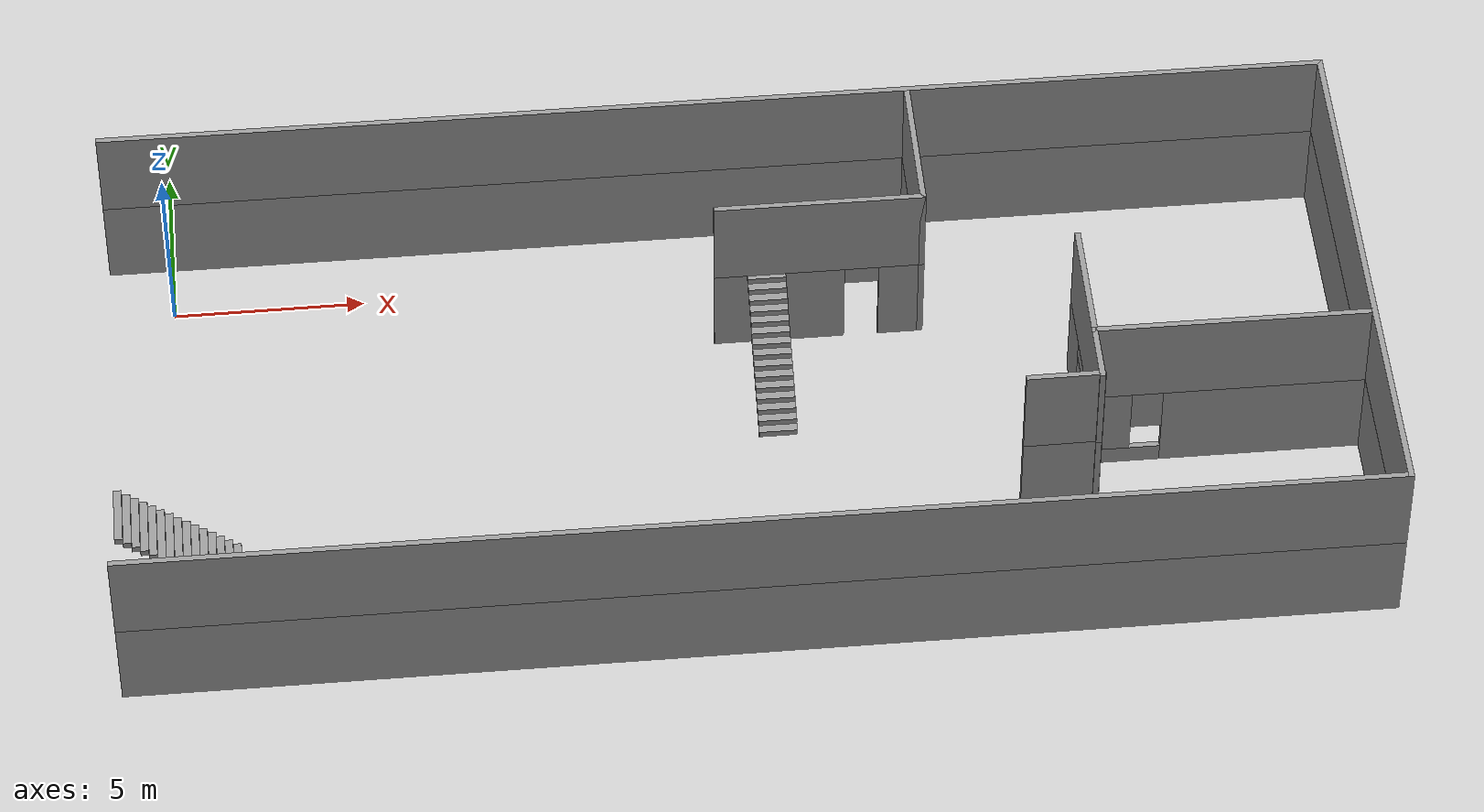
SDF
<sdf version="1.7">
 <world name="default">
  <model name="ground_plane">
   <static>1</static>
   <link name="link">
    <collision name="collision">
     <geometry><plane><normal>0 0 1</normal><size>100 100</size></plane></geometry>
     <surface><friction><ode><mu>100</mu><mu2>50</mu2></ode></friction></surface>
    </collision>
    <visual name="visual">
     <cast_shadows>0</cast_shadows>
     <geometry><plane><normal>0 0 1</normal><size>100 100</size></plane></geometry>
     <material>
      <script><uri>file://media/materials/scripts/gazebo.material</uri><name>Gazebo/Grey</name></script>
     </material>
    </visual>
   </link>
  </model>
  <model name="room_with_stairs">
   <pose>14.4299 -5.56754 0 0 -0 0</pose>
   <link name="Stairs_1">
    <visual name="Stairs_1_Visual_0">
     <pose>-13.0715 -3.52268 0.083333 0 -0 -1.5708</pose>
     <geometry><box><size>1.64089 0.206311 0.166667</size></box></geometry>
     <material>
      <script><uri>file://media/materials/scripts/gazebo.material</uri><name>Gazebo/Grey</name></script>
      <ambient>1 1 1 1</ambient>
     </material>
     <meta><layer>0</layer></meta>
    </visual>
    <collision name="Stairs_1_Collision_0">
     <geometry><box><size>1.64089 0.206311 0.166667</size></box></geometry>
     <pose>-13.0715 -3.52268 0.083333 0 -0 -1.5708</pose>
    </collision>
    <visual name="Stairs_1_Visual_1">
     <pose>-13.2778 -3.52268 0.25 0 -0 -1.5708</pose>
     <geometry><box><size>1.64089 0.206311 0.166667</size></box></geometry>
     <material>
      <script><uri>file://media/materials/scripts/gazebo.material</uri><name>Gazebo/Grey</name></script>
      <ambient>1 1 1 1</ambient>
     </material>
     <meta><layer>0</layer></meta>
    </visual>
    <collision name="Stairs_1_Collision_1">
     <geometry><box><size>1.64089 0.206311 0.166667</size></box></geometry>
     <pose>-13.2778 -3.52268 0.25 0 -0 -1.5708</pose>
    </collision>
    <visual name="Stairs_1_Visual_2">
     <pose>-13.4841 -3.52268 0.416667 0 -0 -1.5708</pose>
     <geometry><box><size>1.64089 0.206311 0.166667</size></box></geometry>
     <material>
      <script><uri>file://media/materials/scripts/gazebo.material</uri><name>Gazebo/Grey</name></script>
      <ambient>1 1 1 1</ambient>
     </material>
     <meta><layer>0</layer></meta>
    </visual>
    <collision name="Stairs_1_Collision_2">
     <geometry><box><size>1.64089 0.206311 0.166667</size></box></geometry>
     <pose>-13.4841 -3.52268 0.416667 0 -0 -1.5708</pose>
    </collision>
    <visual name="Stairs_1_Visual_3">
     <pose>-13.6904 -3.52268 0.583333 0 -0 -1.5708</pose>
     <geometry><box><size>1.64089 0.206311 0.166667</size></box></geometry>
     <material>
      <script><uri>file://media/materials/scripts/gazebo.material</uri><name>Gazebo/Grey</name></script>
      <ambient>1 1 1 1</ambient>
     </material>
     <meta><layer>0</layer></meta>
    </visual>
    <collision name="Stairs_1_Collision_3">
     <geometry><box><size>1.64089 0.206311 0.166667</size></box></geometry>
     <pose>-13.6904 -3.52268 0.583333 0 -0 -1.5708</pose>
    </collision>
    <visual name="Stairs_1_Visual_4">
     <pose>-13.8967 -3.52268 0.75 0 -0 -1.5708</pose>
     <geometry><box><size>1.64089 0.206311 0.166667</size></box></geometry>
     <material>
      <script><uri>file://media/materials/scripts/gazebo.material</uri><name>Gazebo/Grey</name></script>
      <ambient>1 1 1 1</ambient>
     </material>
     <meta><layer>0</layer></meta>
    </visual>
    <collision name="Stairs_1_Collision_4">
     <geometry><box><size>1.64089 0.206311 0.166667</size></box></geometry>
     <pose>-13.8967 -3.52268 0.75 0 -0 -1.5708</pose>
    </collision>
    <visual name="Stairs_1_Visual_5">
     <pose>-14.103 -3.52268 0.916667 0 -0 -1.5708</pose>
     <geometry><box><size>1.64089 0.206311 0.166667</size></box></geometry>
     <material>
      <script><uri>file://media/materials/scripts/gazebo.material</uri><name>Gazebo/Grey</name></script>
      <ambient>1 1 1 1</ambient>
     </material>
     <meta><layer>0</layer></meta>
    </visual>
    <collision name="Stairs_1_Collision_5">
     <geometry><box><size>1.64089 0.206311 0.166667</size></box></geometry>
     <pose>-14.103 -3.52268 0.916667 0 -0 -1.5708</pose>
    </collision>
    <visual name="Stairs_1_Visual_6">
     <pose>-14.3094 -3.52268 1.08333 0 -0 -1.5708</pose>
     <geometry><box><size>1.64089 0.206311 0.166667</size></box></geometry>
     <material>
      <script><uri>file://media/materials/scripts/gazebo.material</uri><name>Gazebo/Grey</name></script>
      <ambient>1 1 1 1</ambient>
     </material>
     <meta><layer>0</layer></meta>
    </visual>
    <collision name="Stairs_1_Collision_6">
     <geometry><box><size>1.64089 0.206311 0.166667</size></box></geometry>
     <pose>-14.3094 -3.52268 1.08333 0 -0 -1.5708</pose>
    </collision>
    <visual name="Stairs_1_Visual_7">
     <pose>-14.5157 -3.52268 1.25 0 -0 -1.5708</pose>
     <geometry><box><size>1.64089 0.206311 0.166667</size></box></geometry>
     <material>
      <script><uri>file://media/materials/scripts/gazebo.material</uri><name>Gazebo/Grey</name></script>
      <ambient>1 1 1 1</ambient>
     </material>
     <meta><layer>0</layer></meta>
    </visual>
    <collision name="Stairs_1_Collision_7">
     <geometry><box><size>1.64089 0.206311 0.166667</size></box></geometry>
     <pose>-14.5157 -3.52268 1.25 0 -0 -1.5708</pose>
    </collision>
    <visual name="Stairs_1_Visual_8">
     <pose>-14.722 -3.52268 1.41667 0 -0 -1.5708</pose>
     <geometry><box><size>1.64089 0.206311 0.166667</size></box></geometry>
     <material>
      <script><uri>file://media/materials/scripts/gazebo.material</uri><name>Gazebo/Grey</name></script>
      <ambient>1 1 1 1</ambient>
     </material>
     <meta><layer>0</layer></meta>
    </visual>
    <collision name="Stairs_1_Collision_8">
     <geometry><box><size>1.64089 0.206311 0.166667</size></box></geometry>
     <pose>-14.722 -3.52268 1.41667 0 -0 -1.5708</pose>
    </collision>
    <visual name="Stairs_1_Visual_9">
     <pose>-14.9283 -3.52268 1.58333 0 -0 -1.5708</pose>
     <geometry><box><size>1.64089 0.206311 0.166667</size></box></geometry>
     <material>
      <script><uri>file://media/materials/scripts/gazebo.material</uri><name>Gazebo/Grey</name></script>
      <ambient>1 1 1 1</ambient>
     </material>
     <meta><layer>0</layer></meta>
    </visual>
    <collision name="Stairs_1_Collision_9">
     <geometry><box><size>1.64089 0.206311 0.166667</size></box></geometry>
     <pose>-14.9283 -3.52268 1.58333 0 -0 -1.5708</pose>
    </collision>
    <visual name="Stairs_1_Visual_10">
     <pose>-15.1346 -3.52268 1.75 0 -0 -1.5708</pose>
     <geometry><box><size>1.64089 0.206311 0.166667</size></box></geometry>
     <material>
      <script><uri>file://media/materials/scripts/gazebo.material</uri><name>Gazebo/Grey</name></script>
      <ambient>1 1 1 1</ambient>
     </material>
     <meta><layer>0</layer></meta>
    </visual>
    <collision name="Stairs_1_Collision_10">
     <geometry><box><size>1.64089 0.206311 0.166667</size></box></geometry>
     <pose>-15.1346 -3.52268 1.75 0 -0 -1.5708</pose>
    </collision>
    <visual name="Stairs_1_Visual_11">
     <pose>-15.3409 -3.52268 1.91667 0 -0 -1.5708</pose>
     <geometry><box><size>1.64089 0.206311 0.166667</size></box></geometry>
     <material>
      <script><uri>file://media/materials/scripts/gazebo.material</uri><name>Gazebo/Grey</name></script>
      <ambient>1 1 1 1</ambient>
     </material>
     <meta><layer>0</layer></meta>
    </visual>
    <collision name="Stairs_1_Collision_11">
     <geometry><box><size>1.64089 0.206311 0.166667</size></box></geometry>
     <pose>-15.3409 -3.52268 1.91667 0 -0 -1.5708</pose>
    </collision>
    <visual name="Stairs_1_Visual_12">
     <pose>-15.5472 -3.52268 2.08333 0 -0 -1.5708</pose>
     <geometry><box><size>1.64089 0.206311 0.166667</size></box></geometry>
     <material>
      <script><uri>file://media/materials/scripts/gazebo.material</uri><name>Gazebo/Grey</name></script>
      <ambient>1 1 1 1</ambient>
     </material>
     <meta><layer>0</layer></meta>
    </visual>
    <collision name="Stairs_1_Collision_12">
     <geometry><box><size>1.64089 0.206311 0.166667</size></box></geometry>
     <pose>-15.5472 -3.52268 2.08333 0 -0 -1.5708</pose>
    </collision>
    <visual name="Stairs_1_Visual_13">
     <pose>-15.7535 -3.52268 2.25 0 -0 -1.5708</pose>
     <geometry><box><size>1.64089 0.206311 0.166667</size></box></geometry>
     <material>
      <script><uri>file://media/materials/scripts/gazebo.material</uri><name>Gazebo/Grey</name></script>
      <ambient>1 1 1 1</ambient>
     </material>
     <meta><layer>0</layer></meta>
    </visual>
    <collision name="Stairs_1_Collision_13">
     <geometry><box><size>1.64089 0.206311 0.166667</size></box></geometry>
     <pose>-15.7535 -3.52268 2.25 0 -0 -1.5708</pose>
    </collision>
    <visual name="Stairs_1_Visual_14">
     <pose>-15.9598 -3.52268 2.41667 0 -0 -1.5708</pose>
     <geometry><box><size>1.64089 0.206311 0.166667</size></box></geometry>
     <material>
      <script><uri>file://media/materials/scripts/gazebo.material</uri><name>Gazebo/Grey</name></script>
      <ambient>1 1 1 1</ambient>
     </material>
     <meta><layer>0</layer></meta>
    </visual>
    <collision name="Stairs_1_Collision_14">
     <geometry><box><size>1.64089 0.206311 0.166667</size></box></geometry>
     <pose>-15.9598 -3.52268 2.41667 0 -0 -1.5708</pose>
    </collision>
   </link>
   <link name="Stairs_2">
    <visual name="Stairs_2_Visual_0">
     <pose>1.05534 0.01065 0.083333 0 -0 -3.14159</pose>
     <geometry><box><size>1 0.233333 0.166667</size></box></geometry>
     <material>
      <script><uri>file://media/materials/scripts/gazebo.material</uri><name>Gazebo/Grey</name></script>
      <ambient>1 1 1 1</ambient>
     </material>
     <meta><layer>0</layer></meta>
    </visual>
    <collision name="Stairs_2_Collision_0">
     <geometry><box><size>1 0.233333 0.166667</size></box></geometry>
     <pose>1.05534 0.01065 0.083333 0 -0 -3.14159</pose>
    </collision>
    <visual name="Stairs_2_Visual_1">
     <pose>1.05534 0.243983 0.25 0 -0 -3.14159</pose>
     <geometry><box><size>1 0.233333 0.166667</size></box></geometry>
     <material>
      <script><uri>file://media/materials/scripts/gazebo.material</uri><name>Gazebo/Grey</name></script>
      <ambient>1 1 1 1</ambient>
     </material>
     <meta><layer>0</layer></meta>
    </visual>
    <collision name="Stairs_2_Collision_1">
     <geometry><box><size>1 0.233333 0.166667</size></box></geometry>
     <pose>1.05534 0.243983 0.25 0 -0 -3.14159</pose>
    </collision>
    <visual name="Stairs_2_Visual_2">
     <pose>1.05534 0.477316 0.416667 0 -0 -3.14159</pose>
     <geometry><box><size>1 0.233333 0.166667</size></box></geometry>
     <material>
      <script><uri>file://media/materials/scripts/gazebo.material</uri><name>Gazebo/Grey</name></script>
      <ambient>1 1 1 1</ambient>
     </material>
     <meta><layer>0</layer></meta>
    </visual>
    <collision name="Stairs_2_Collision_2">
     <geometry><box><size>1 0.233333 0.166667</size></box></geometry>
     <pose>1.05534 0.477316 0.416667 0 -0 -3.14159</pose>
    </collision>
    <visual name="Stairs_2_Visual_3">
     <pose>1.05534 0.710649 0.583333 0 -0 -3.14159</pose>
     <geometry><box><size>1 0.233333 0.166667</size></box></geometry>
     <material>
      <script><uri>file://media/materials/scripts/gazebo.material</uri><name>Gazebo/Grey</name></script>
      <ambient>1 1 1 1</ambient>
     </material>
     <meta><layer>0</layer></meta>
    </visual>
    <collision name="Stairs_2_Collision_3">
     <geometry><box><size>1 0.233333 0.166667</size></box></geometry>
     <pose>1.05534 0.710649 0.583333 0 -0 -3.14159</pose>
    </collision>
    <visual name="Stairs_2_Visual_4">
     <pose>1.05534 0.943983 0.75 0 -0 -3.14159</pose>
     <geometry><box><size>1 0.233333 0.166667</size></box></geometry>
     <material>
      <script><uri>file://media/materials/scripts/gazebo.material</uri><name>Gazebo/Grey</name></script>
      <ambient>1 1 1 1</ambient>
     </material>
     <meta><layer>0</layer></meta>
    </visual>
    <collision name="Stairs_2_Collision_4">
     <geometry><box><size>1 0.233333 0.166667</size></box></geometry>
     <pose>1.05534 0.943983 0.75 0 -0 -3.14159</pose>
    </collision>
    <visual name="Stairs_2_Visual_5">
     <pose>1.05534 1.17732 0.916667 0 -0 -3.14159</pose>
     <geometry><box><size>1 0.233333 0.166667</size></box></geometry>
     <material>
      <script><uri>file://media/materials/scripts/gazebo.material</uri><name>Gazebo/Grey</name></script>
      <ambient>1 1 1 1</ambient>
     </material>
     <meta><layer>0</layer></meta>
    </visual>
    <collision name="Stairs_2_Collision_5">
     <geometry><box><size>1 0.233333 0.166667</size></box></geometry>
     <pose>1.05534 1.17732 0.916667 0 -0 -3.14159</pose>
    </collision>
    <visual name="Stairs_2_Visual_6">
     <pose>1.05534 1.41065 1.08333 0 -0 -3.14159</pose>
     <geometry><box><size>1 0.233333 0.166667</size></box></geometry>
     <material>
      <script><uri>file://media/materials/scripts/gazebo.material</uri><name>Gazebo/Grey</name></script>
      <ambient>1 1 1 1</ambient>
     </material>
     <meta><layer>0</layer></meta>
    </visual>
    <collision name="Stairs_2_Collision_6">
     <geometry><box><size>1 0.233333 0.166667</size></box></geometry>
     <pose>1.05534 1.41065 1.08333 0 -0 -3.14159</pose>
    </collision>
    <visual name="Stairs_2_Visual_7">
     <pose>1.05534 1.64398 1.25 0 -0 -3.14159</pose>
     <geometry><box><size>1 0.233333 0.166667</size></box></geometry>
     <material>
      <script><uri>file://media/materials/scripts/gazebo.material</uri><name>Gazebo/Grey</name></script>
      <ambient>1 1 1 1</ambient>
     </material>
     <meta><layer>0</layer></meta>
    </visual>
    <collision name="Stairs_2_Collision_7">
     <geometry><box><size>1 0.233333 0.166667</size></box></geometry>
     <pose>1.05534 1.64398 1.25 0 -0 -3.14159</pose>
    </collision>
    <visual name="Stairs_2_Visual_8">
     <pose>1.05534 1.87732 1.41667 0 -0 -3.14159</pose>
     <geometry><box><size>1 0.233333 0.166667</size></box></geometry>
     <material>
      <script><uri>file://media/materials/scripts/gazebo.material</uri><name>Gazebo/Grey</name></script>
      <ambient>1 1 1 1</ambient>
     </material>
     <meta><layer>0</layer></meta>
    </visual>
    <collision name="Stairs_2_Collision_8">
     <geometry><box><size>1 0.233333 0.166667</size></box></geometry>
     <pose>1.05534 1.87732 1.41667 0 -0 -3.14159</pose>
    </collision>
    <visual name="Stairs_2_Visual_9">
     <pose>1.05534 2.11065 1.58333 0 -0 -3.14159</pose>
     <geometry><box><size>1 0.233333 0.166667</size></box></geometry>
     <material>
      <script><uri>file://media/materials/scripts/gazebo.material</uri><name>Gazebo/Grey</name></script>
      <ambient>1 1 1 1</ambient>
     </material>
     <meta><layer>0</layer></meta>
    </visual>
    <collision name="Stairs_2_Collision_9">
     <geometry><box><size>1 0.233333 0.166667</size></box></geometry>
     <pose>1.05534 2.11065 1.58333 0 -0 -3.14159</pose>
    </collision>
    <visual name="Stairs_2_Visual_10">
     <pose>1.05534 2.34398 1.75 0 -0 -3.14159</pose>
     <geometry><box><size>1 0.233333 0.166667</size></box></geometry>
     <material>
      <script><uri>file://media/materials/scripts/gazebo.material</uri><name>Gazebo/Grey</name></script>
      <ambient>1 1 1 1</ambient>
     </material>
     <meta><layer>0</layer></meta>
    </visual>
    <collision name="Stairs_2_Collision_10">
     <geometry><box><size>1 0.233333 0.166667</size></box></geometry>
     <pose>1.05534 2.34398 1.75 0 -0 -3.14159</pose>
    </collision>
    <visual name="Stairs_2_Visual_11">
     <pose>1.05534 2.57732 1.91667 0 -0 -3.14159</pose>
     <geometry><box><size>1 0.233333 0.166667</size></box></geometry>
     <material>
      <script><uri>file://media/materials/scripts/gazebo.material</uri><name>Gazebo/Grey</name></script>
      <ambient>1 1 1 1</ambient>
     </material>
     <meta><layer>0</layer></meta>
    </visual>
    <collision name="Stairs_2_Collision_11">
     <geometry><box><size>1 0.233333 0.166667</size></box></geometry>
     <pose>1.05534 2.57732 1.91667 0 -0 -3.14159</pose>
    </collision>
    <visual name="Stairs_2_Visual_12">
     <pose>1.05534 2.81065 2.08333 0 -0 -3.14159</pose>
     <geometry><box><size>1 0.233333 0.166667</size></box></geometry>
     <material>
      <script><uri>file://media/materials/scripts/gazebo.material</uri><name>Gazebo/Grey</name></script>
      <ambient>1 1 1 1</ambient>
     </material>
     <meta><layer>0</layer></meta>
    </visual>
    <collision name="Stairs_2_Collision_12">
     <geometry><box><size>1 0.233333 0.166667</size></box></geometry>
     <pose>1.05534 2.81065 2.08333 0 -0 -3.14159</pose>
    </collision>
    <visual name="Stairs_2_Visual_13">
     <pose>1.05534 3.04398 2.25 0 -0 -3.14159</pose>
     <geometry><box><size>1 0.233333 0.166667</size></box></geometry>
     <material>
      <script><uri>file://media/materials/scripts/gazebo.material</uri><name>Gazebo/Grey</name></script>
      <ambient>1 1 1 1</ambient>
     </material>
     <meta><layer>0</layer></meta>
    </visual>
    <collision name="Stairs_2_Collision_13">
     <geometry><box><size>1 0.233333 0.166667</size></box></geometry>
     <pose>1.05534 3.04398 2.25 0 -0 -3.14159</pose>
    </collision>
    <visual name="Stairs_2_Visual_14">
     <pose>1.05534 3.27732 2.41667 0 -0 -3.14159</pose>
     <geometry><box><size>1 0.233333 0.166667</size></box></geometry>
     <material>
      <script><uri>file://media/materials/scripts/gazebo.material</uri><name>Gazebo/Grey</name></script>
      <ambient>1 1 1 1</ambient>
     </material>
     <meta><layer>0</layer></meta>
    </visual>
    <collision name="Stairs_2_Collision_14">
     <geometry><box><size>1 0.233333 0.166667</size></box></geometry>
     <pose>1.05534 3.27732 2.41667 0 -0 -3.14159</pose>
    </collision>
   </link>
   <link name="Stairs_3">
    <visual name="Stairs_3_Visual_0">
     <pose>12.5449 1.76044 0.083333 0 -0 0</pose>
     <geometry><box><size>1 0.233333 0.166667</size></box></geometry>
     <material>
      <script><uri>file://media/materials/scripts/gazebo.material</uri><name>Gazebo/Grey</name></script>
      <ambient>1 1 1 1</ambient>
     </material>
     <meta><layer>0</layer></meta>
    </visual>
    <collision name="Stairs_3_Collision_0">
     <geometry><box><size>1 0.233333 0.166667</size></box></geometry>
     <pose>12.5449 1.76044 0.083333 0 -0 0</pose>
    </collision>
    <visual name="Stairs_3_Visual_1">
     <pose>12.5449 1.5271 0.25 0 -0 0</pose>
     <geometry><box><size>1 0.233333 0.166667</size></box></geometry>
     <material>
      <script><uri>file://media/materials/scripts/gazebo.material</uri><name>Gazebo/Grey</name></script>
      <ambient>1 1 1 1</ambient>
     </material>
     <meta><layer>0</layer></meta>
    </visual>
    <collision name="Stairs_3_Collision_1">
     <geometry><box><size>1 0.233333 0.166667</size></box></geometry>
     <pose>12.5449 1.5271 0.25 0 -0 0</pose>
    </collision>
    <visual name="Stairs_3_Visual_2">
     <pose>12.5449 1.29377 0.416667 0 -0 0</pose>
     <geometry><box><size>1 0.233333 0.166667</size></box></geometry>
     <material>
      <script><uri>file://media/materials/scripts/gazebo.material</uri><name>Gazebo/Grey</name></script>
      <ambient>1 1 1 1</ambient>
     </material>
     <meta><layer>0</layer></meta>
    </visual>
    <collision name="Stairs_3_Collision_2">
     <geometry><box><size>1 0.233333 0.166667</size></box></geometry>
     <pose>12.5449 1.29377 0.416667 0 -0 0</pose>
    </collision>
    <visual name="Stairs_3_Visual_3">
     <pose>12.5449 1.06044 0.583333 0 -0 0</pose>
     <geometry><box><size>1 0.233333 0.166667</size></box></geometry>
     <material>
      <script><uri>file://media/materials/scripts/gazebo.material</uri><name>Gazebo/Grey</name></script>
      <ambient>1 1 1 1</ambient>
     </material>
     <meta><layer>0</layer></meta>
    </visual>
    <collision name="Stairs_3_Collision_3">
     <geometry><box><size>1 0.233333 0.166667</size></box></geometry>
     <pose>12.5449 1.06044 0.583333 0 -0 0</pose>
    </collision>
    <visual name="Stairs_3_Visual_4">
     <pose>12.5449 0.827104 0.75 0 -0 0</pose>
     <geometry><box><size>1 0.233333 0.166667</size></box></geometry>
     <material>
      <script><uri>file://media/materials/scripts/gazebo.material</uri><name>Gazebo/Grey</name></script>
      <ambient>1 1 1 1</ambient>
     </material>
     <meta><layer>0</layer></meta>
    </visual>
    <collision name="Stairs_3_Collision_4">
     <geometry><box><size>1 0.233333 0.166667</size></box></geometry>
     <pose>12.5449 0.827104 0.75 0 -0 0</pose>
    </collision>
    <visual name="Stairs_3_Visual_5">
     <pose>12.5449 0.593771 0.916667 0 -0 0</pose>
     <geometry><box><size>1 0.233333 0.166667</size></box></geometry>
     <material>
      <script><uri>file://media/materials/scripts/gazebo.material</uri><name>Gazebo/Grey</name></script>
      <ambient>1 1 1 1</ambient>
     </material>
     <meta><layer>0</layer></meta>
    </visual>
    <collision name="Stairs_3_Collision_5">
     <geometry><box><size>1 0.233333 0.166667</size></box></geometry>
     <pose>12.5449 0.593771 0.916667 0 -0 0</pose>
    </collision>
    <visual name="Stairs_3_Visual_6">
     <pose>12.5449 0.360437 1.08333 0 -0 0</pose>
     <geometry><box><size>1 0.233333 0.166667</size></box></geometry>
     <material>
      <script><uri>file://media/materials/scripts/gazebo.material</uri><name>Gazebo/Grey</name></script>
      <ambient>1 1 1 1</ambient>
     </material>
     <meta><layer>0</layer></meta>
    </visual>
    <collision name="Stairs_3_Collision_6">
     <geometry><box><size>1 0.233333 0.166667</size></box></geometry>
     <pose>12.5449 0.360437 1.08333 0 -0 0</pose>
    </collision>
    <visual name="Stairs_3_Visual_7">
     <pose>12.5449 0.127104 1.25 0 -0 0</pose>
     <geometry><box><size>1 0.233333 0.166667</size></box></geometry>
     <material>
      <script><uri>file://media/materials/scripts/gazebo.material</uri><name>Gazebo/Grey</name></script>
      <ambient>1 1 1 1</ambient>
     </material>
     <meta><layer>0</layer></meta>
    </visual>
    <collision name="Stairs_3_Collision_7">
     <geometry><box><size>1 0.233333 0.166667</size></box></geometry>
     <pose>12.5449 0.127104 1.25 0 -0 0</pose>
    </collision>
    <visual name="Stairs_3_Visual_8">
     <pose>12.5449 -0.106229 1.41667 0 -0 0</pose>
     <geometry><box><size>1 0.233333 0.166667</size></box></geometry>
     <material>
      <script><uri>file://media/materials/scripts/gazebo.material</uri><name>Gazebo/Grey</name></script>
      <ambient>1 1 1 1</ambient>
     </material>
     <meta><layer>0</layer></meta>
    </visual>
    <collision name="Stairs_3_Collision_8">
     <geometry><box><size>1 0.233333 0.166667</size></box></geometry>
     <pose>12.5449 -0.106229 1.41667 0 -0 0</pose>
    </collision>
    <visual name="Stairs_3_Visual_9">
     <pose>12.5449 -0.339562 1.58333 0 -0 0</pose>
     <geometry><box><size>1 0.233333 0.166667</size></box></geometry>
     <material>
      <script><uri>file://media/materials/scripts/gazebo.material</uri><name>Gazebo/Grey</name></script>
      <ambient>1 1 1 1</ambient>
     </material>
     <meta><layer>0</layer></meta>
    </visual>
    <collision name="Stairs_3_Collision_9">
     <geometry><box><size>1 0.233333 0.166667</size></box></geometry>
     <pose>12.5449 -0.339562 1.58333 0 -0 0</pose>
    </collision>
    <visual name="Stairs_3_Visual_10">
     <pose>12.5449 -0.572896 1.75 0 -0 0</pose>
     <geometry><box><size>1 0.233333 0.166667</size></box></geometry>
     <material>
      <script><uri>file://media/materials/scripts/gazebo.material</uri><name>Gazebo/Grey</name></script>
      <ambient>1 1 1 1</ambient>
     </material>
     <meta><layer>0</layer></meta>
    </visual>
    <collision name="Stairs_3_Collision_10">
     <geometry><box><size>1 0.233333 0.166667</size></box></geometry>
     <pose>12.5449 -0.572896 1.75 0 -0 0</pose>
    </collision>
    <visual name="Stairs_3_Visual_11">
     <pose>12.5449 -0.806229 1.91667 0 -0 0</pose>
     <geometry><box><size>1 0.233333 0.166667</size></box></geometry>
     <material>
      <script><uri>file://media/materials/scripts/gazebo.material</uri><name>Gazebo/Grey</name></script>
      <ambient>1 1 1 1</ambient>
     </material>
     <meta><layer>0</layer></meta>
    </visual>
    <collision name="Stairs_3_Collision_11">
     <geometry><box><size>1 0.233333 0.166667</size></box></geometry>
     <pose>12.5449 -0.806229 1.91667 0 -0 0</pose>
    </collision>
    <visual name="Stairs_3_Visual_12">
     <pose>12.5449 -1.03956 2.08333 0 -0 0</pose>
     <geometry><box><size>1 0.233333 0.166667</size></box></geometry>
     <material>
      <script><uri>file://media/materials/scripts/gazebo.material</uri><name>Gazebo/Grey</name></script>
      <ambient>1 1 1 1</ambient>
     </material>
     <meta><layer>0</layer></meta>
    </visual>
    <collision name="Stairs_3_Collision_12">
     <geometry><box><size>1 0.233333 0.166667</size></box></geometry>
     <pose>12.5449 -1.03956 2.08333 0 -0 0</pose>
    </collision>
    <visual name="Stairs_3_Visual_13">
     <pose>12.5449 -1.2729 2.25 0 -0 0</pose>
     <geometry><box><size>1 0.233333 0.166667</size></box></geometry>
     <material>
      <script><uri>file://media/materials/scripts/gazebo.material</uri><name>Gazebo/Grey</name></script>
      <ambient>1 1 1 1</ambient>
     </material>
     <meta><layer>0</layer></meta>
    </visual>
    <collision name="Stairs_3_Collision_13">
     <geometry><box><size>1 0.233333 0.166667</size></box></geometry>
     <pose>12.5449 -1.2729 2.25 0 -0 0</pose>
    </collision>
    <visual name="Stairs_3_Visual_14">
     <pose>12.5449 -1.50623 2.41667 0 -0 0</pose>
     <geometry><box><size>1 0.233333 0.166667</size></box></geometry>
     <material>
      <script><uri>file://media/materials/scripts/gazebo.material</uri><name>Gazebo/Grey</name></script>
      <ambient>1 1 1 1</ambient>
     </material>
     <meta><layer>0</layer></meta>
    </visual>
    <collision name="Stairs_3_Collision_14">
     <geometry><box><size>1 0.233333 0.166667</size></box></geometry>
     <pose>12.5449 -1.50623 2.41667 0 -0 0</pose>
    </collision>
   </link>
   <link name="Wall_26">
    <pose>2.43809 3.3634 0 0 -0 0</pose>
    <visual name="Wall_26_Visual_0">
     <pose>-1.04303 0 1.25 0 -0 0</pose>
     <geometry><box><size>3.41395 0.15 2.5</size></box></geometry>
     <material>
      <script><uri>file://media/materials/scripts/gazebo.material</uri><name>Gazebo/Grey</name></script>
      <ambient>1 1 1 1</ambient>
     </material>
     <meta><layer>0</layer></meta>
    </visual>
    <collision name="Wall_26_Collision_0">
     <geometry><box><size>3.41395 0.15 2.5</size></box></geometry>
     <pose>-1.04303 0 1.25 0 -0 0</pose>
    </collision>
    <visual name="Wall_26_Visual_1">
     <pose>2.15698 0 1.25 0 -0 0</pose>
     <geometry><box><size>1.18605 0.15 2.5</size></box></geometry>
     <material>
      <script><uri>file://media/materials/scripts/gazebo.material</uri><name>Gazebo/Grey</name></script>
      <ambient>1 1 1 1</ambient>
     </material>
     <meta><layer>0</layer></meta>
    </visual>
    <collision name="Wall_26_Collision_1">
     <geometry><box><size>1.18605 0.15 2.5</size></box></geometry>
     <pose>2.15698 0 1.25 0 -0 0</pose>
    </collision>
    <visual name="Wall_26_Visual_2">
     <pose>1.11395 0 2.25 0 -0 0</pose>
     <geometry><box><size>0.9 0.15 0.5</size></box></geometry>
     <material>
      <script><uri>file://media/materials/scripts/gazebo.material</uri><name>Gazebo/Grey</name></script>
      <ambient>1 1 1 1</ambient>
     </material>
     <meta><layer>0</layer></meta>
    </visual>
    <collision name="Wall_26_Collision_2">
     <geometry><box><size>0.9 0.15 0.5</size></box></geometry>
     <pose>1.11395 0 2.25 0 -0 0</pose>
    </collision>
   </link>
   <link name="Wall_27">
    <collision name="Wall_27_Collision">
     <geometry><box><size>4 0.15 2.5</size></box></geometry>
     <pose>0 0 1.25 0 -0 0</pose>
    </collision>
    <visual name="Wall_27_Visual">
     <pose>0 0 1.25 0 -0 0</pose>
     <geometry><box><size>4 0.15 2.5</size></box></geometry>
     <material>
      <script><uri>file://media/materials/scripts/gazebo.material</uri><name>Gazebo/Grey</name></script>
      <ambient>1 1 1 1</ambient>
     </material>
     <meta><layer>0</layer></meta>
    </visual>
    <pose>5.11309 5.2884 0 0 -0 1.5708</pose>
   </link>
   <link name="Wall_34">
    <pose>12.456 -1.72142 0 0 -0 3.14159</pose>
    <visual name="Wall_34_Visual_0">
     <pose>-0.973121 0 1.25 0 -0 0</pose>
     <geometry><box><size>5.30376 0.15 2.5</size></box></geometry>
     <material>
      <script><uri>file://media/materials/scripts/gazebo.material</uri><name>Gazebo/Grey</name></script>
      <ambient>1 1 1 1</ambient>
     </material>
     <meta><layer>0</layer></meta>
    </visual>
    <collision name="Wall_34_Collision_0">
     <geometry><box><size>5.30376 0.15 2.5</size></box></geometry>
     <pose>-0.973121 0 1.25 0 -0 0</pose>
    </collision>
    <visual name="Wall_34_Visual_1">
     <pose>2.65188 0 0.25 0 -0 0</pose>
     <geometry><box><size>1.94624 0.15 0.5</size></box></geometry>
     <material>
      <script><uri>file://media/materials/scripts/gazebo.material</uri><name>Gazebo/Grey</name></script>
      <ambient>1 1 1 1</ambient>
     </material>
     <meta><layer>0</layer></meta>
    </visual>
    <collision name="Wall_34_Collision_1">
     <geometry><box><size>1.94624 0.15 0.5</size></box></geometry>
     <pose>2.65188 0 0.25 0 -0 0</pose>
    </collision>
    <visual name="Wall_34_Visual_2">
     <pose>3.05188 0 1.5 0 -0 0</pose>
     <geometry><box><size>1.14624 0.15 2</size></box></geometry>
     <material>
      <script><uri>file://media/materials/scripts/gazebo.material</uri><name>Gazebo/Grey</name></script>
      <ambient>1 1 1 1</ambient>
     </material>
     <meta><layer>0</layer></meta>
    </visual>
    <collision name="Wall_34_Collision_2">
     <geometry><box><size>1.14624 0.15 2</size></box></geometry>
     <pose>3.05188 0 1.5 0 -0 0</pose>
    </collision>
    <visual name="Wall_34_Visual_3">
     <pose>2.07876 0 1.9 0 -0 0</pose>
     <geometry><box><size>0.8 0.15 1.2</size></box></geometry>
     <material>
      <script><uri>file://media/materials/scripts/gazebo.material</uri><name>Gazebo/Grey</name></script>
      <ambient>1 1 1 1</ambient>
     </material>
     <meta><layer>0</layer></meta>
    </visual>
    <collision name="Wall_34_Collision_3">
     <geometry><box><size>0.8 0.15 1.2</size></box></geometry>
     <pose>2.07876 0 1.9 0 -0 0</pose>
    </collision>
   </link>
   <link name="Wall_36">
    <pose>8.90598 -0.826159 0 0 -0 -1.5708</pose>
    <visual name="Wall_36_Visual_0">
     <pose>-1.74016 0 1.25 0 -0 0</pose>
     <geometry><box><size>1.51968 0.15 2.5</size></box></geometry>
     <material>
      <script><uri>file://media/materials/scripts/gazebo.material</uri><name>Gazebo/Grey</name></script>
      <ambient>1 1 1 1</ambient>
     </material>
     <meta><layer>0</layer></meta>
    </visual>
    <collision name="Wall_36_Collision_0">
     <geometry><box><size>1.51968 0.15 2.5</size></box></geometry>
     <pose>-1.74016 0 1.25 0 -0 0</pose>
    </collision>
    <visual name="Wall_36_Visual_1">
     <pose>1.20984 0 1.25 0 -0 0</pose>
     <geometry><box><size>2.58032 0.15 2.5</size></box></geometry>
     <material>
      <script><uri>file://media/materials/scripts/gazebo.material</uri><name>Gazebo/Grey</name></script>
      <ambient>1 1 1 1</ambient>
     </material>
     <meta><layer>0</layer></meta>
    </visual>
    <collision name="Wall_36_Collision_1">
     <geometry><box><size>2.58032 0.15 2.5</size></box></geometry>
     <pose>1.20984 0 1.25 0 -0 0</pose>
    </collision>
    <visual name="Wall_36_Visual_2">
     <pose>-0.530322 0 2.25 0 -0 0</pose>
     <geometry><box><size>0.9 0.15 0.5</size></box></geometry>
     <material>
      <script><uri>file://media/materials/scripts/gazebo.material</uri><name>Gazebo/Grey</name></script>
      <ambient>1 1 1 1</ambient>
     </material>
     <meta><layer>0</layer></meta>
    </visual>
    <collision name="Wall_36_Collision_2">
     <geometry><box><size>0.9 0.15 0.5</size></box></geometry>
     <pose>-0.530322 0 2.25 0 -0 0</pose>
    </collision>
   </link>
   <link name="Wall_37">
    <collision name="Wall_37_Collision">
     <geometry><box><size>2.01493 0.15 2.5</size></box></geometry>
     <pose>0 0 1.25 0 -0 0</pose>
    </collision>
    <visual name="Wall_37_Visual">
     <pose>0 0 1.25 0 -0 0</pose>
     <geometry><box><size>2.01493 0.15 2.5</size></box></geometry>
     <material>
      <script><uri>file://media/materials/scripts/gazebo.material</uri><name>Gazebo/Grey</name></script>
      <ambient>1 1 1 1</ambient>
     </material>
     <meta><layer>0</layer></meta>
    </visual>
    <pose>7.98841 -3.21398 0 0 -0 -3.13362</pose>
   </link>
   <link name="Wall_4">
    <collision name="Wall_4_Collision">
     <geometry><box><size>32.25 0.15 2.5</size></box></geometry>
     <pose>0 0 1.25 0 -0 0</pose>
    </collision>
    <visual name="Wall_4_Visual">
     <pose>0 0 1.25 0 -0 0</pose>
     <geometry><box><size>32.25 0.15 2.5</size></box></geometry>
     <material>
      <script><uri>file://media/materials/scripts/gazebo.material</uri><name>Gazebo/Grey</name></script>
      <ambient>1 1 1 1</ambient>
     </material>
     <meta><layer>0</layer></meta>
    </visual>
    <pose>0.013726 7.3 0 0 -0 0</pose>
   </link>
   <link name="Wall_42">
    <collision name="Wall_42_Collision">
     <geometry><box><size>32.25 0.15 2.5</size></box></geometry>
     <pose>0 0 1.25 0 -0 0</pose>
    </collision>
    <visual name="Wall_42_Visual">
     <pose>0 0 1.25 0 -0 0</pose>
     <geometry><box><size>32.25 0.15 2.5</size></box></geometry>
     <material>
      <script><uri>file://media/materials/scripts/gazebo.material</uri><name>Gazebo/Grey</name></script>
      <ambient>1 1 1 1</ambient>
     </material>
     <meta><layer>1</layer></meta>
    </visual>
    <pose>0.013726 7.3 2.5 0 -0 0</pose>
   </link>
   <link name="Wall_43">
    <collision name="Wall_43_Collision">
     <geometry><box><size>14.75 0.15 2.5</size></box></geometry>
     <pose>0 0 1.25 0 -0 0</pose>
    </collision>
    <visual name="Wall_43_Visual">
     <pose>0 0 1.25 0 -0 0</pose>
     <geometry><box><size>14.75 0.15 2.5</size></box></geometry>
     <material>
      <script><uri>file://media/materials/scripts/gazebo.material</uri><name>Gazebo/Grey</name></script>
      <ambient>1 1 1 1</ambient>
     </material>
     <meta><layer>1</layer></meta>
    </visual>
    <pose>16.0637 0 2.5 0 -0 -1.5708</pose>
   </link>
   <link name="Wall_44">
    <collision name="Wall_44_Collision">
     <geometry><box><size>32.25 0.15 2.5</size></box></geometry>
     <pose>0 0 1.25 0 -0 0</pose>
    </collision>
    <visual name="Wall_44_Visual">
     <pose>0 0 1.25 0 -0 0</pose>
     <geometry><box><size>32.25 0.15 2.5</size></box></geometry>
     <material>
      <script><uri>file://media/materials/scripts/gazebo.material</uri><name>Gazebo/Grey</name></script>
      <ambient>1 1 1 1</ambient>
     </material>
     <meta><layer>1</layer></meta>
    </visual>
    <pose>0.013726 -7.3 2.5 0 -0 3.14159</pose>
   </link>
   <link name="Wall_5">
    <collision name="Wall_5_Collision">
     <geometry><box><size>14.75 0.15 2.5</size></box></geometry>
     <pose>0 0 1.25 0 -0 0</pose>
    </collision>
    <visual name="Wall_5_Visual">
     <pose>0 0 1.25 0 -0 0</pose>
     <geometry><box><size>14.75 0.15 2.5</size></box></geometry>
     <material>
      <script><uri>file://media/materials/scripts/gazebo.material</uri><name>Gazebo/Grey</name></script>
      <ambient>1 1 1 1</ambient>
     </material>
     <meta><layer>0</layer></meta>
    </visual>
    <pose>16.0637 0 0 0 -0 -1.5708</pose>
   </link>
   <link name="Wall_6">
    <collision name="Wall_6_Collision">
     <geometry><box><size>32.25 0.15 2.5</size></box></geometry>
     <pose>0 0 1.25 0 -0 0</pose>
    </collision>
    <visual name="Wall_6_Visual">
     <pose>0 0 1.25 0 -0 0</pose>
     <geometry><box><size>32.25 0.15 2.5</size></box></geometry>
     <material>
      <script><uri>file://media/materials/scripts/gazebo.material</uri><name>Gazebo/Grey</name></script>
      <ambient>1 1 1 1</ambient>
     </material>
     <meta><layer>0</layer></meta>
    </visual>
    <pose>0.013726 -7.3 0 0 -0 3.14159</pose>
   </link>
   <link name="Wall_60">
    <collision name="Wall_60_Collision">
     <geometry><box><size>5.5 0.15 2.5</size></box></geometry>
     <pose>0 0 1.25 0 -0 0</pose>
    </collision>
    <visual name="Wall_60_Visual">
     <pose>0 0 1.25 0 -0 0</pose>
     <geometry><box><size>5.5 0.15 2.5</size></box></geometry>
     <material>
      <script><uri>file://media/materials/scripts/gazebo.material</uri><name>Gazebo/Grey</name></script>
      <ambient>1 1 1 1</ambient>
     </material>
     <meta><layer>1</layer></meta>
    </visual>
    <pose>2.43809 3.3634 2.5 0 -0 0</pose>
   </link>
   <link name="Wall_61">
    <collision name="Wall_61_Collision">
     <geometry><box><size>4 0.15 2.5</size></box></geometry>
     <pose>0 0 1.25 0 -0 0</pose>
    </collision>
    <visual name="Wall_61_Visual">
     <pose>0 0 1.25 0 -0 0</pose>
     <geometry><box><size>4 0.15 2.5</size></box></geometry>
     <material>
      <script><uri>file://media/materials/scripts/gazebo.material</uri><name>Gazebo/Grey</name></script>
      <ambient>1 1 1 1</ambient>
     </material>
     <meta><layer>1</layer></meta>
    </visual>
    <pose>5.11309 5.2884 2.5 0 -0 1.5708</pose>
   </link>
   <link name="Wall_66">
    <collision name="Wall_66_Collision">
     <geometry><box><size>7.25 0.15 2.5</size></box></geometry>
     <pose>0 0 1.25 0 -0 0</pose>
    </collision>
    <visual name="Wall_66_Visual">
     <pose>0 0 1.25 0 -0 0</pose>
     <geometry><box><size>7.25 0.15 2.5</size></box></geometry>
     <material>
      <script><uri>file://media/materials/scripts/gazebo.material</uri><name>Gazebo/Grey</name></script>
      <ambient>1 1 1 1</ambient>
     </material>
     <meta><layer>1</layer></meta>
    </visual>
    <pose>12.456 -1.72142 2.5 0 -0 3.14159</pose>
   </link>
   <link name="Wall_67">
    <collision name="Wall_67_Collision">
     <geometry><box><size>5 0.15 2.5</size></box></geometry>
     <pose>0 0 1.25 0 -0 0</pose>
    </collision>
    <visual name="Wall_67_Visual">
     <pose>0 0 1.25 0 -0 0</pose>
     <geometry><box><size>5 0.15 2.5</size></box></geometry>
     <material>
      <script><uri>file://media/materials/scripts/gazebo.material</uri><name>Gazebo/Grey</name></script>
      <ambient>1 1 1 1</ambient>
     </material>
     <meta><layer>1</layer></meta>
    </visual>
    <pose>8.90598 -0.826159 2.5 0 -0 -1.5708</pose>
   </link>
   <link name="Wall_68">
    <collision name="Wall_68_Collision">
     <geometry><box><size>2.01493 0.15 2.5</size></box></geometry>
     <pose>0 0 1.25 0 -0 0</pose>
    </collision>
    <visual name="Wall_68_Visual">
     <pose>0 0 1.25 0 -0 0</pose>
     <geometry><box><size>2.01493 0.15 2.5</size></box></geometry>
     <material>
      <script><uri>file://media/materials/scripts/gazebo.material</uri><name>Gazebo/Grey</name></script>
      <ambient>1 1 1 1</ambient>
     </material>
     <meta><layer>1</layer></meta>
    </visual>
    <pose>7.98842 -3.21398 2.5 0 -0 -3.13362</pose>
   </link>
   <static>1</static>
  </model>
 </world>
</sdf>
